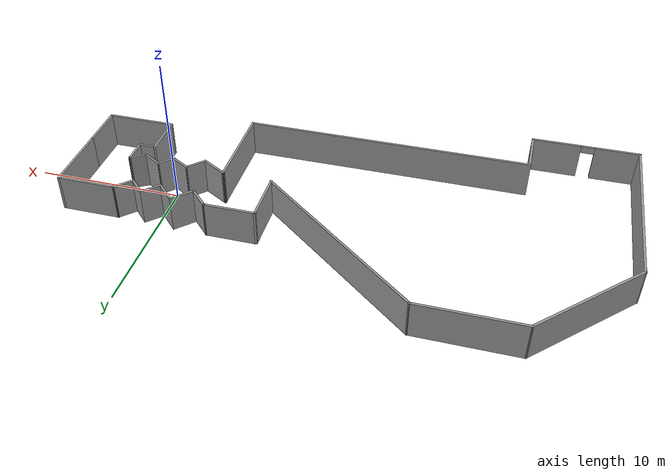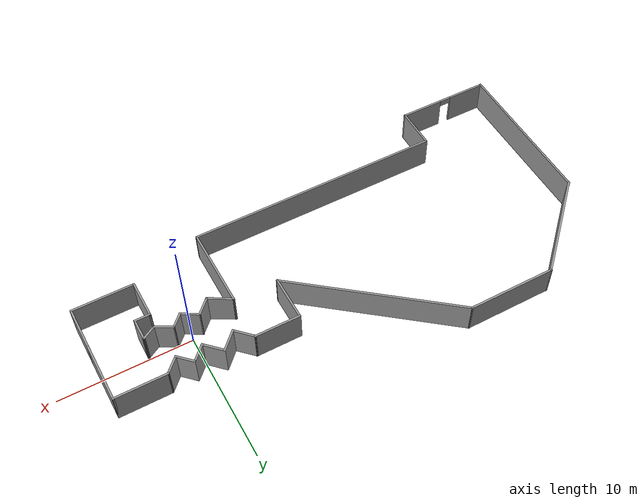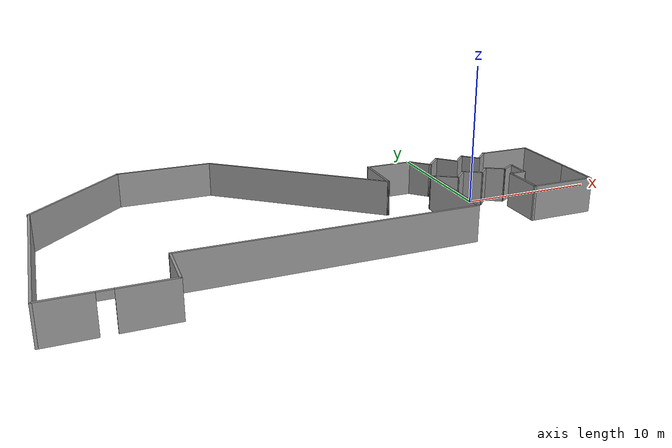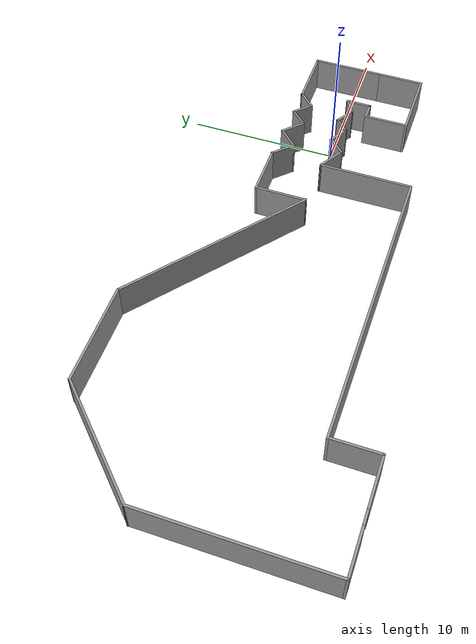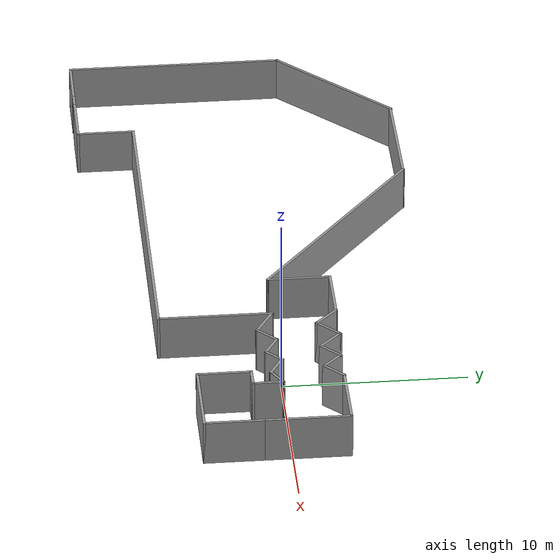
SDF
<?xml version='1.0'?>
<sdf version='1.6'>
  <model name='World_Chase'>
    <pose frame=''>-11.5654 -0.501484 0 0 -0 0</pose>
    <link name='Wall_0'>
      <collision name='Wall_0_Collision'>
        <geometry>
          <box>
            <size>3.5 0.15 2.5</size>
          </box>
        </geometry>
        <pose frame=''>0 0 1.25 0 -0 0</pose>
      </collision>
      <visual name='Wall_0_Visual'>
        <pose frame=''>0 0 1.25 0 -0 0</pose>
        <geometry>
          <box>
            <size>3.5 0.15 2.5</size>
          </box>
        </geometry>
        <material>
          <script>
            <uri>file://media/materials/scripts/gazebo.material</uri>
            <name>Gazebo/Grey</name>
          </script>
          <ambient>1 1 1 1</ambient>
        </material>
        <meta>
          <layer>0</layer>
        </meta>
      </visual>
      <pose frame=''>4.84537 2.06648 0 0 -0 1.5708</pose>
    </link>
    <link name='Wall_1'>
      <collision name='Wall_1_Collision'>
        <geometry>
          <box>
            <size>3.5 0.15 2.5</size>
          </box>
        </geometry>
        <pose frame=''>0 0 1.25 0 -0 0</pose>
      </collision>
      <visual name='Wall_1_Visual'>
        <pose frame=''>0 0 1.25 0 -0 0</pose>
        <geometry>
          <box>
            <size>3.5 0.15 2.5</size>
          </box>
        </geometry>
        <material>
          <script>
            <uri>file://media/materials/scripts/gazebo.material</uri>
            <name>Gazebo/Grey</name>
          </script>
          <ambient>1 1 1 1</ambient>
        </material>
        <meta>
          <layer>0</layer>
        </meta>
      </visual>
      <pose frame=''>6.52036 3.74148 0 0 -0 0</pose>
    </link>
    <link name='Wall_16'>
      <collision name='Wall_16_Collision'>
        <geometry>
          <box>
            <size>1.75 0.15 2.5</size>
          </box>
        </geometry>
        <pose frame=''>0 0 1.25 0 -0 0</pose>
      </collision>
      <visual name='Wall_16_Visual'>
        <pose frame=''>0 0 1.25 0 -0 0</pose>
        <geometry>
          <box>
            <size>1.75 0.15 2.5</size>
          </box>
        </geometry>
        <material>
          <script>
            <uri>file://media/materials/scripts/gazebo.material</uri>
            <name>Gazebo/Grey</name>
          </script>
          <ambient>1 1 1 1</ambient>
        </material>
        <meta>
          <layer>0</layer>
        </meta>
      </visual>
      <pose frame=''>9.89242 3.1758 0 0 -0 0.785398</pose>
    </link>
    <link name='Wall_17'>
      <collision name='Wall_17_Collision'>
        <geometry>
          <box>
            <size>1.75 0.15 2.5</size>
          </box>
        </geometry>
        <pose frame=''>0 0 1.25 0 -0 0</pose>
      </collision>
      <visual name='Wall_17_Visual'>
        <pose frame=''>0 0 1.25 0 -0 0</pose>
        <geometry>
          <box>
            <size>1.75 0.15 2.5</size>
          </box>
        </geometry>
        <material>
          <script>
            <uri>file://media/materials/scripts/gazebo.material</uri>
            <name>Gazebo/Grey</name>
          </script>
          <ambient>1 1 1 1</ambient>
        </material>
        <meta>
          <layer>0</layer>
        </meta>
      </visual>
      <pose frame=''>11.0238 3.1758 0 0 -0 -0.785398</pose>
    </link>
    <link name='Wall_18'>
      <collision name='Wall_18_Collision'>
        <geometry>
          <box>
            <size>1.5 0.15 2.5</size>
          </box>
        </geometry>
        <pose frame=''>0 0 1.25 0 -0 0</pose>
      </collision>
      <visual name='Wall_18_Visual'>
        <pose frame=''>0 0 1.25 0 -0 0</pose>
        <geometry>
          <box>
            <size>1.5 0.15 2.5</size>
          </box>
        </geometry>
        <material>
          <script>
            <uri>file://media/materials/scripts/gazebo.material</uri>
            <name>Gazebo/Grey</name>
          </script>
          <ambient>1 1 1 1</ambient>
        </material>
        <meta>
          <layer>0</layer>
        </meta>
      </visual>
      <pose frame=''>12.0668 3.08741 0 0 -0 0.785398</pose>
    </link>
    <link name='Wall_19'>
      <collision name='Wall_19_Collision'>
        <geometry>
          <box>
            <size>1.5 0.15 2.5</size>
          </box>
        </geometry>
        <pose frame=''>0 0 1.25 0 -0 0</pose>
      </collision>
      <visual name='Wall_19_Visual'>
        <pose frame=''>0 0 1.25 0 -0 0</pose>
        <geometry>
          <box>
            <size>1.5 0.15 2.5</size>
          </box>
        </geometry>
        <material>
          <script>
            <uri>file://media/materials/scripts/gazebo.material</uri>
            <name>Gazebo/Grey</name>
          </script>
          <ambient>1 1 1 1</ambient>
        </material>
        <meta>
          <layer>0</layer>
        </meta>
      </visual>
      <pose frame=''>13.0214 3.08741 0 0 -0 -0.785398</pose>
    </link>
    <link name='Wall_2'>
      <collision name='Wall_2_Collision'>
        <geometry>
          <box>
            <size>1.75 0.15 2.5</size>
          </box>
        </geometry>
        <pose frame=''>0 0 1.25 0 -0 0</pose>
      </collision>
      <visual name='Wall_2_Visual'>
        <pose frame=''>0 0 1.25 0 -0 0</pose>
        <geometry>
          <box>
            <size>1.75 0.15 2.5</size>
          </box>
        </geometry>
        <material>
          <script>
            <uri>file://media/materials/scripts/gazebo.material</uri>
            <name>Gazebo/Grey</name>
          </script>
          <ambient>1 1 1 1</ambient>
        </material>
        <meta>
          <layer>0</layer>
        </meta>
      </visual>
      <pose frame=''>8.76105 3.1758 0 0 -0 -0.785398</pose>
    </link>
    <link name='Wall_20'>
      <collision name='Wall_20_Collision'>
        <geometry>
          <box>
            <size>1.5 0.15 2.5</size>
          </box>
        </geometry>
        <pose frame=''>0 0 1.25 0 -0 0</pose>
      </collision>
      <visual name='Wall_20_Visual'>
        <pose frame=''>0 0 1.25 0 -0 0</pose>
        <geometry>
          <box>
            <size>1.5 0.15 2.5</size>
          </box>
        </geometry>
        <material>
          <script>
            <uri>file://media/materials/scripts/gazebo.material</uri>
            <name>Gazebo/Grey</name>
          </script>
          <ambient>1 1 1 1</ambient>
        </material>
        <meta>
          <layer>0</layer>
        </meta>
      </visual>
      <pose frame=''>13.976 3.08741 0 0 -0 0.785398</pose>
    </link>
    <link name='Wall_21'>
      <collision name='Wall_21_Collision'>
        <geometry>
          <box>
            <size>4 0.15 2.5</size>
          </box>
        </geometry>
        <pose frame=''>0 0 1.25 0 -0 0</pose>
      </collision>
      <visual name='Wall_21_Visual'>
        <pose frame=''>0 0 1.25 0 -0 0</pose>
        <geometry>
          <box>
            <size>4 0.15 2.5</size>
          </box>
        </geometry>
        <material>
          <script>
            <uri>file://media/materials/scripts/gazebo.material</uri>
            <name>Gazebo/Grey</name>
          </script>
          <ambient>1 1 1 1</ambient>
        </material>
        <meta>
          <layer>0</layer>
        </meta>
      </visual>
      <pose frame=''>16.3783 3.56471 0 0 -0 0</pose>
    </link>
    <link name='Wall_22'>
      <collision name='Wall_22_Collision'>
        <geometry>
          <box>
            <size>4.75 0.15 2.5</size>
          </box>
        </geometry>
        <pose frame=''>0 0 1.25 0 -0 0</pose>
      </collision>
      <visual name='Wall_22_Visual'>
        <pose frame=''>0 0 1.25 0 -0 0</pose>
        <geometry>
          <box>
            <size>4.75 0.15 2.5</size>
          </box>
        </geometry>
        <material>
          <script>
            <uri>file://media/materials/scripts/gazebo.material</uri>
            <name>Gazebo/Grey</name>
          </script>
          <ambient>1 1 1 1</ambient>
        </material>
        <meta>
          <layer>0</layer>
        </meta>
      </visual>
      <pose frame=''>18.3033 1.26471 0 0 -0 -1.5708</pose>
    </link>
    <link name='Wall_23'>
      <collision name='Wall_23_Collision'>
        <geometry>
          <box>
            <size>3.25 0.15 2.5</size>
          </box>
        </geometry>
        <pose frame=''>0 0 1.25 0 -0 0</pose>
      </collision>
      <visual name='Wall_23_Visual'>
        <pose frame=''>0 0 1.25 0 -0 0</pose>
        <geometry>
          <box>
            <size>3.25 0.15 2.5</size>
          </box>
        </geometry>
        <material>
          <script>
            <uri>file://media/materials/scripts/gazebo.material</uri>
            <name>Gazebo/Grey</name>
          </script>
          <ambient>1 1 1 1</ambient>
        </material>
        <meta>
          <layer>0</layer>
        </meta>
      </visual>
      <pose frame=''>18.3033 -2.58529 0 0 -0 -1.5708</pose>
    </link>
    <link name='Wall_24'>
      <collision name='Wall_24_Collision'>
        <geometry>
          <box>
            <size>4.75 0.15 2.5</size>
          </box>
        </geometry>
        <pose frame=''>0 0 1.25 0 -0 0</pose>
      </collision>
      <visual name='Wall_24_Visual'>
        <pose frame=''>0 0 1.25 0 -0 0</pose>
        <geometry>
          <box>
            <size>4.75 0.15 2.5</size>
          </box>
        </geometry>
        <material>
          <script>
            <uri>file://media/materials/scripts/gazebo.material</uri>
            <name>Gazebo/Grey</name>
          </script>
          <ambient>1 1 1 1</ambient>
        </material>
        <meta>
          <layer>0</layer>
        </meta>
      </visual>
      <pose frame=''>16.0033 -4.13529 0 0 -0 3.14159</pose>
    </link>
    <link name='Wall_25'>
      <collision name='Wall_25_Collision'>
        <geometry>
          <box>
            <size>3 0.15 2.5</size>
          </box>
        </geometry>
        <pose frame=''>0 0 1.25 0 -0 0</pose>
      </collision>
      <visual name='Wall_25_Visual'>
        <pose frame=''>0 0 1.25 0 -0 0</pose>
        <geometry>
          <box>
            <size>3 0.15 2.5</size>
          </box>
        </geometry>
        <material>
          <script>
            <uri>file://media/materials/scripts/gazebo.material</uri>
            <name>Gazebo/Grey</name>
          </script>
          <ambient>1 1 1 1</ambient>
        </material>
        <meta>
          <layer>0</layer>
        </meta>
      </visual>
      <pose frame=''>13.7033 -2.71029 0 0 -0 1.5708</pose>
    </link>
    <link name='Wall_26'>
      <collision name='Wall_26_Collision'>
        <geometry>
          <box>
            <size>1.25 0.15 2.5</size>
          </box>
        </geometry>
        <pose frame=''>0 0 1.25 0 -0 0</pose>
      </collision>
      <visual name='Wall_26_Visual'>
        <pose frame=''>0 0 1.25 0 -0 0</pose>
        <geometry>
          <box>
            <size>1.25 0.15 2.5</size>
          </box>
        </geometry>
        <material>
          <script>
            <uri>file://media/materials/scripts/gazebo.material</uri>
            <name>Gazebo/Grey</name>
          </script>
          <ambient>1 1 1 1</ambient>
        </material>
        <meta>
          <layer>0</layer>
        </meta>
      </visual>
      <pose frame=''>14.2533 -1.28529 0 0 -0 0</pose>
    </link>
    <link name='Wall_27'>
      <collision name='Wall_27_Collision'>
        <geometry>
          <box>
            <size>1.75 0.15 2.5</size>
          </box>
        </geometry>
        <pose frame=''>0 0 1.25 0 -0 0</pose>
      </collision>
      <visual name='Wall_27_Visual'>
        <pose frame=''>0 0 1.25 0 -0 0</pose>
        <geometry>
          <box>
            <size>1.75 0.15 2.5</size>
          </box>
        </geometry>
        <material>
          <script>
            <uri>file://media/materials/scripts/gazebo.material</uri>
            <name>Gazebo/Grey</name>
          </script>
          <ambient>1 1 1 1</ambient>
        </material>
        <meta>
          <layer>0</layer>
        </meta>
      </visual>
      <pose frame=''>14.8033 -0.485292 0 0 -0 1.5708</pose>
    </link>
    <link name='Wall_28'>
      <collision name='Wall_28_Collision'>
        <geometry>
          <box>
            <size>1.25 0.15 2.5</size>
          </box>
        </geometry>
        <pose frame=''>0 0 1.25 0 -0 0</pose>
      </collision>
      <visual name='Wall_28_Visual'>
        <pose frame=''>0 0 1.25 0 -0 0</pose>
        <geometry>
          <box>
            <size>1.25 0.15 2.5</size>
          </box>
        </geometry>
        <material>
          <script>
            <uri>file://media/materials/scripts/gazebo.material</uri>
            <name>Gazebo/Grey</name>
          </script>
          <ambient>1 1 1 1</ambient>
        </material>
        <meta>
          <layer>0</layer>
        </meta>
      </visual>
      <pose frame=''>14.3269 0.039708 0 0 -0 -2.61799</pose>
    </link>
    <link name='Wall_29'>
      <collision name='Wall_29_Collision'>
        <geometry>
          <box>
            <size>1.5 0.15 2.5</size>
          </box>
        </geometry>
        <pose frame=''>0 0 1.25 0 -0 0</pose>
      </collision>
      <visual name='Wall_29_Visual'>
        <pose frame=''>0 0 1.25 0 -0 0</pose>
        <geometry>
          <box>
            <size>1.5 0.15 2.5</size>
          </box>
        </geometry>
        <material>
          <script>
            <uri>file://media/materials/scripts/gazebo.material</uri>
            <name>Gazebo/Grey</name>
          </script>
          <ambient>1 1 1 1</ambient>
        </material>
        <meta>
          <layer>0</layer>
        </meta>
      </visual>
      <pose frame=''>13.2661 0.102208 0 0 -0 2.61799</pose>
    </link>
    <link name='Wall_30'>
      <collision name='Wall_30_Collision'>
        <geometry>
          <box>
            <size>1.25 0.15 2.5</size>
          </box>
        </geometry>
        <pose frame=''>0 0 1.25 0 -0 0</pose>
      </collision>
      <visual name='Wall_30_Visual'>
        <pose frame=''>0 0 1.25 0 -0 0</pose>
        <geometry>
          <box>
            <size>1.25 0.15 2.5</size>
          </box>
        </geometry>
        <material>
          <script>
            <uri>file://media/materials/scripts/gazebo.material</uri>
            <name>Gazebo/Grey</name>
          </script>
          <ambient>1 1 1 1</ambient>
        </material>
        <meta>
          <layer>0</layer>
        </meta>
      </visual>
      <pose frame=''>12.2926 0.050799 0 0 -0 -2.35619</pose>
    </link>
    <link name='Wall_31'>
      <collision name='Wall_31_Collision'>
        <geometry>
          <box>
            <size>1.5 0.15 2.5</size>
          </box>
        </geometry>
        <pose frame=''>0 0 1.25 0 -0 0</pose>
      </collision>
      <visual name='Wall_31_Visual'>
        <pose frame=''>0 0 1.25 0 -0 0</pose>
        <geometry>
          <box>
            <size>1.5 0.15 2.5</size>
          </box>
        </geometry>
        <material>
          <script>
            <uri>file://media/materials/scripts/gazebo.material</uri>
            <name>Gazebo/Grey</name>
          </script>
          <ambient>1 1 1 1</ambient>
        </material>
        <meta>
          <layer>0</layer>
        </meta>
      </visual>
      <pose frame=''>11.3191 -0.00061 0 0 -0 2.61799</pose>
    </link>
    <link name='Wall_32'>
      <collision name='Wall_32_Collision'>
        <geometry>
          <box>
            <size>1.5 0.15 2.5</size>
          </box>
        </geometry>
        <pose frame=''>0 0 1.25 0 -0 0</pose>
      </collision>
      <visual name='Wall_32_Visual'>
        <pose frame=''>0 0 1.25 0 -0 0</pose>
        <geometry>
          <box>
            <size>1.5 0.15 2.5</size>
          </box>
        </geometry>
        <material>
          <script>
            <uri>file://media/materials/scripts/gazebo.material</uri>
            <name>Gazebo/Grey</name>
          </script>
          <ambient>1 1 1 1</ambient>
        </material>
        <meta>
          <layer>0</layer>
        </meta>
      </visual>
      <pose frame=''>10.2572 -0.140407 0 0 -0 -2.35619</pose>
    </link>
    <link name='Wall_33'>
      <collision name='Wall_33_Collision'>
        <geometry>
          <box>
            <size>2 0.15 2.5</size>
          </box>
        </geometry>
        <pose frame=''>0 0 1.25 0 -0 0</pose>
      </collision>
      <visual name='Wall_33_Visual'>
        <pose frame=''>0 0 1.25 0 -0 0</pose>
        <geometry>
          <box>
            <size>2 0.15 2.5</size>
          </box>
        </geometry>
        <material>
          <script>
            <uri>file://media/materials/scripts/gazebo.material</uri>
            <name>Gazebo/Grey</name>
          </script>
          <ambient>1 1 1 1</ambient>
        </material>
        <meta>
          <layer>0</layer>
        </meta>
      </visual>
      <pose frame=''>8.97888 -0.155204 0 0 -0 2.61799</pose>
    </link>
    <link name='Wall_34'>
      <collision name='Wall_34_Collision'>
        <geometry>
          <box>
            <size>6.25 0.15 2.5</size>
          </box>
        </geometry>
        <pose frame=''>0 0 1.25 0 -0 0</pose>
      </collision>
      <visual name='Wall_34_Visual'>
        <pose frame=''>0 0 1.25 0 -0 0</pose>
        <geometry>
          <box>
            <size>6.25 0.15 2.5</size>
          </box>
        </geometry>
        <material>
          <script>
            <uri>file://media/materials/scripts/gazebo.material</uri>
            <name>Gazebo/Grey</name>
          </script>
          <ambient>1 1 1 1</ambient>
        </material>
        <meta>
          <layer>0</layer>
        </meta>
      </visual>
      <pose frame=''>8.1778 -2.7427 0 0 -0 -1.5708</pose>
    </link>
    <link name='Wall_35'>
      <collision name='Wall_35_Collision'>
        <geometry>
          <box>
            <size>19.5 0.15 2.5</size>
          </box>
        </geometry>
        <pose frame=''>0 0 1.25 0 -0 0</pose>
      </collision>
      <visual name='Wall_35_Visual'>
        <pose frame=''>0 0 1.25 0 -0 0</pose>
        <geometry>
          <box>
            <size>19.5 0.15 2.5</size>
          </box>
        </geometry>
        <material>
          <script>
            <uri>file://media/materials/scripts/gazebo.material</uri>
            <name>Gazebo/Grey</name>
          </script>
          <ambient>1 1 1 1</ambient>
        </material>
        <meta>
          <layer>0</layer>
        </meta>
      </visual>
      <pose frame=''>-1.4972 -5.7927 0 0 -0 3.14159</pose>
    </link>
    <link name='Wall_36'>
      <collision name='Wall_36_Collision'>
        <geometry>
          <box>
            <size>3.25 0.15 2.5</size>
          </box>
        </geometry>
        <pose frame=''>0 0 1.25 0 -0 0</pose>
      </collision>
      <visual name='Wall_36_Visual'>
        <pose frame=''>0 0 1.25 0 -0 0</pose>
        <geometry>
          <box>
            <size>3.25 0.15 2.5</size>
          </box>
        </geometry>
        <material>
          <script>
            <uri>file://media/materials/scripts/gazebo.material</uri>
            <name>Gazebo/Grey</name>
          </script>
          <ambient>1 1 1 1</ambient>
        </material>
        <meta>
          <layer>0</layer>
        </meta>
      </visual>
      <pose frame=''>-11.1722 -7.3427 0 0 -0 -1.5708</pose>
    </link>
    <link name='Wall_37'>
      <pose frame=''>-14.7222 -8.8927 0 0 -0 3.14159</pose>
      <visual name='Wall_37_Visual_0'>
        <pose frame=''>-1.96311 0 1.25 0 -0 0</pose>
        <geometry>
          <box>
            <size>3.32378 0.15 2.5</size>
          </box>
        </geometry>
        <material>
          <script>
            <uri>file://media/materials/scripts/gazebo.material</uri>
            <name>Gazebo/Grey</name>
          </script>
          <ambient>1 1 1 1</ambient>
        </material>
        <meta>
          <layer>0</layer>
        </meta>
      </visual>
      <collision name='Wall_37_Collision_0'>
        <geometry>
          <box>
            <size>3.32378 0.15 2.5</size>
          </box>
        </geometry>
        <pose frame=''>-1.96311 0 1.25 0 -0 0</pose>
      </collision>
      <visual name='Wall_37_Visual_1'>
        <pose frame=''>2.11189 0 1.25 0 -0 0</pose>
        <geometry>
          <box>
            <size>3.02622 0.15 2.5</size>
          </box>
        </geometry>
        <material>
          <script>
            <uri>file://media/materials/scripts/gazebo.material</uri>
            <name>Gazebo/Grey</name>
          </script>
          <ambient>1 1 1 1</ambient>
        </material>
        <meta>
          <layer>0</layer>
        </meta>
      </visual>
      <collision name='Wall_37_Collision_1'>
        <geometry>
          <box>
            <size>3.02622 0.15 2.5</size>
          </box>
        </geometry>
        <pose frame=''>2.11189 0 1.25 0 -0 0</pose>
      </collision>
      <visual name='Wall_37_Visual_2'>
        <pose frame=''>0.148781 0 2.25 0 -0 0</pose>
        <geometry>
          <box>
            <size>0.9 0.15 0.5</size>
          </box>
        </geometry>
        <material>
          <script>
            <uri>file://media/materials/scripts/gazebo.material</uri>
            <name>Gazebo/Grey</name>
          </script>
          <ambient>1 1 1 1</ambient>
        </material>
        <meta>
          <layer>0</layer>
        </meta>
      </visual>
      <collision name='Wall_37_Collision_2'>
        <geometry>
          <box>
            <size>0.9 0.15 0.5</size>
          </box>
        </geometry>
        <pose frame=''>0.148781 0 2.25 0 -0 0</pose>
      </collision>
    </link>
    <link name='Wall_38'>
      <collision name='Wall_38_Collision'>
        <geometry>
          <box>
            <size>12 0.15 2.5</size>
          </box>
        </geometry>
        <pose frame=''>0 0 1.25 0 -0 0</pose>
      </collision>
      <visual name='Wall_38_Visual'>
        <pose frame=''>0 0 1.25 0 -0 0</pose>
        <geometry>
          <box>
            <size>12 0.15 2.5</size>
          </box>
        </geometry>
        <material>
          <script>
            <uri>file://media/materials/scripts/gazebo.material</uri>
            <name>Gazebo/Grey</name>
          </script>
          <ambient>1 1 1 1</ambient>
        </material>
        <meta>
          <layer>0</layer>
        </meta>
      </visual>
      <pose frame=''>-18.2722 -2.9677 0 0 -0 1.5708</pose>
    </link>
    <link name='Wall_39'>
      <collision name='Wall_39_Collision'>
        <geometry>
          <box>
            <size>8.5 0.15 2.5</size>
          </box>
        </geometry>
        <pose frame=''>0 0 1.25 0 -0 0</pose>
      </collision>
      <visual name='Wall_39_Visual'>
        <pose frame=''>0 0 1.25 0 -0 0</pose>
        <geometry>
          <box>
            <size>8.5 0.15 2.5</size>
          </box>
        </geometry>
        <material>
          <script>
            <uri>file://media/materials/scripts/gazebo.material</uri>
            <name>Gazebo/Grey</name>
          </script>
          <ambient>1 1 1 1</ambient>
        </material>
        <meta>
          <layer>0</layer>
        </meta>
      </visual>
      <pose frame=''>-15.32 5.90947 0 0 -0 0.785398</pose>
    </link>
    <link name='Wall_40'>
      <collision name='Wall_40_Collision'>
        <geometry>
          <box>
            <size>6.75 0.15 2.5</size>
          </box>
        </geometry>
        <pose frame=''>0 0 1.25 0 -0 0</pose>
      </collision>
      <visual name='Wall_40_Visual'>
        <pose frame=''>0 0 1.25 0 -0 0</pose>
        <geometry>
          <box>
            <size>6.75 0.15 2.5</size>
          </box>
        </geometry>
        <material>
          <script>
            <uri>file://media/materials/scripts/gazebo.material</uri>
            <name>Gazebo/Grey</name>
          </script>
          <ambient>1 1 1 1</ambient>
        </material>
        <meta>
          <layer>0</layer>
        </meta>
      </visual>
      <pose frame=''>-9.06785 8.86164 0 0 -0 0</pose>
    </link>
    <link name='Wall_41'>
      <collision name='Wall_41_Collision'>
        <geometry>
          <box>
            <size>13.7288 0.15 2.5</size>
          </box>
        </geometry>
        <pose frame=''>0 0 1.25 0 -0 0</pose>
      </collision>
      <visual name='Wall_41_Visual'>
        <pose frame=''>0 0 1.25 0 -0 0</pose>
        <geometry>
          <box>
            <size>13.7288 0.15 2.5</size>
          </box>
        </geometry>
        <material>
          <script>
            <uri>file://media/materials/scripts/gazebo.material</uri>
            <name>Gazebo/Grey</name>
          </script>
          <ambient>1 1 1 1</ambient>
        </material>
        <meta>
          <layer>0</layer>
        </meta>
      </visual>
      <pose frame=''>-0.461244 4.62656 0 0 -0 -0.673567</pose>
    </link>
    <static>1</static>
  </model>
</sdf>
